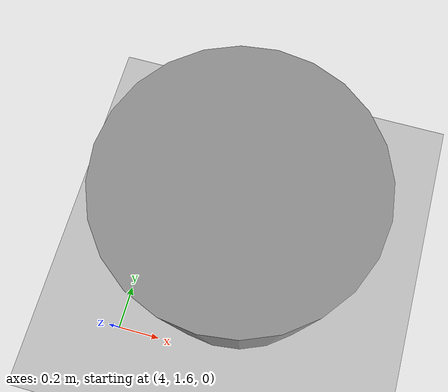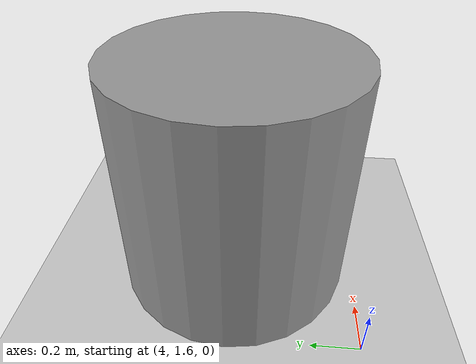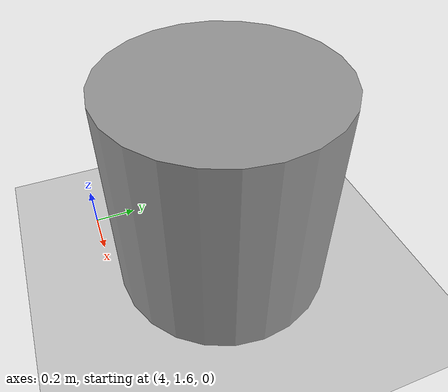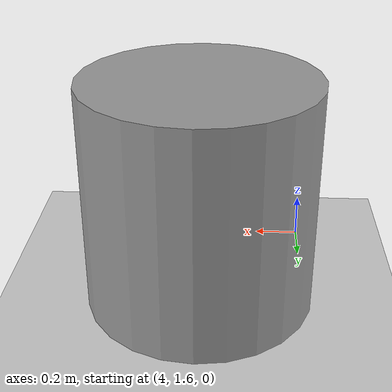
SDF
<?xml version="1.0" ?>
<sdf version="1.5">
  <world name="default">
    <!-- A global light source -->
    <include>
      <uri>model://sun</uri>
    </include>
    <!-- A ground plane -->
    <include>
      <uri>model://ground_plane</uri>
    </include>
    <model name='unit_cylinder_0'>
      <pose frame=''>4.46232 2.13851 0.5 0 -0 0</pose>
      <link name='link'>
        <inertial>
          <mass>1</mass>
          <inertia>
            <ixx>0.145833</ixx>
            <ixy>0</ixy>
            <ixz>0</ixz>
            <iyy>0.145833</iyy>
            <iyz>0</iyz>
            <izz>0.125</izz>
          </inertia>
        </inertial>
        <collision name='collision'>
          <geometry>
            <cylinder>
              <radius>0.5</radius>
              <length>1</length>
            </cylinder>
          </geometry>
          <max_contacts>10</max_contacts>
          <surface>
            <contact>
              <ode/>
            </contact>
            <bounce/>
            <friction>
              <torsional>
                <ode/>
              </torsional>
              <ode/>
            </friction>
          </surface>
        </collision>
        <visual name='visual'>
          <geometry>
            <cylinder>
              <radius>0.5</radius>
              <length>1</length>
            </cylinder>
          </geometry>
          <material>
            <script>
              <name>Gazebo/Grey</name>
              <uri>file://media/materials/scripts/gazebo.material</uri>
            </script>
          </material>
        </visual>
        <self_collide>0</self_collide>
        <enable_wind>0</enable_wind>
        <kinematic>0</kinematic>
      </link>
    </model>
  </world>
</sdf>
